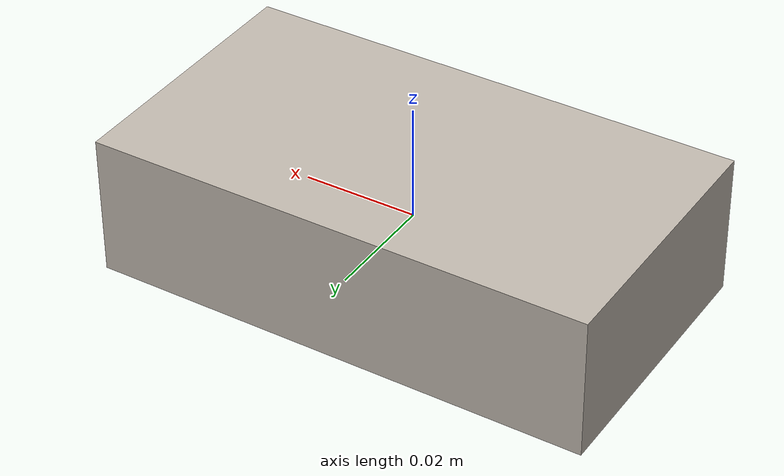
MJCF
<mujoco model="sponge">
  <asset>
    <mesh file="/root/Research_Internship_at_GVlab/scripts/objects/meshes/sponge.stl" name="sponge_mesh" scale="0.8 0.8 0.8"/>
    <texture file="/root/Research_Internship_at_GVlab/scripts/textures/sponge.png" type="2d" name="tex-sponge" />
    <material name="sponge" reflectance="0.7" texrepeat="15 15" texture="tex-sponge" texuniform="true"/>
  </asset>
  <worldbody>
    <body>
      <body name="object">
        <geom pos="0 0 0" mesh="sponge_mesh" type="mesh" solimp="0.998 0.998 0.001" solref="0.001 1" density="50" friction="0.95 0.3 0.1"  material="sponge" group="0" condim="4"/>
      </body>
      <site rgba="0 0 0 0" size="0.005" pos="0 0 -0.045" name="bottom_site"/>
      <site rgba="0 0 0 0" size="0.005" pos="0 0 0.03" name="top_site"/>
      <site rgba="0 0 0 0" size="0.005" pos="0.03 0.03 0" name="horizontal_radius_site"/>
    </body>
  </worldbody>
</mujoco>
